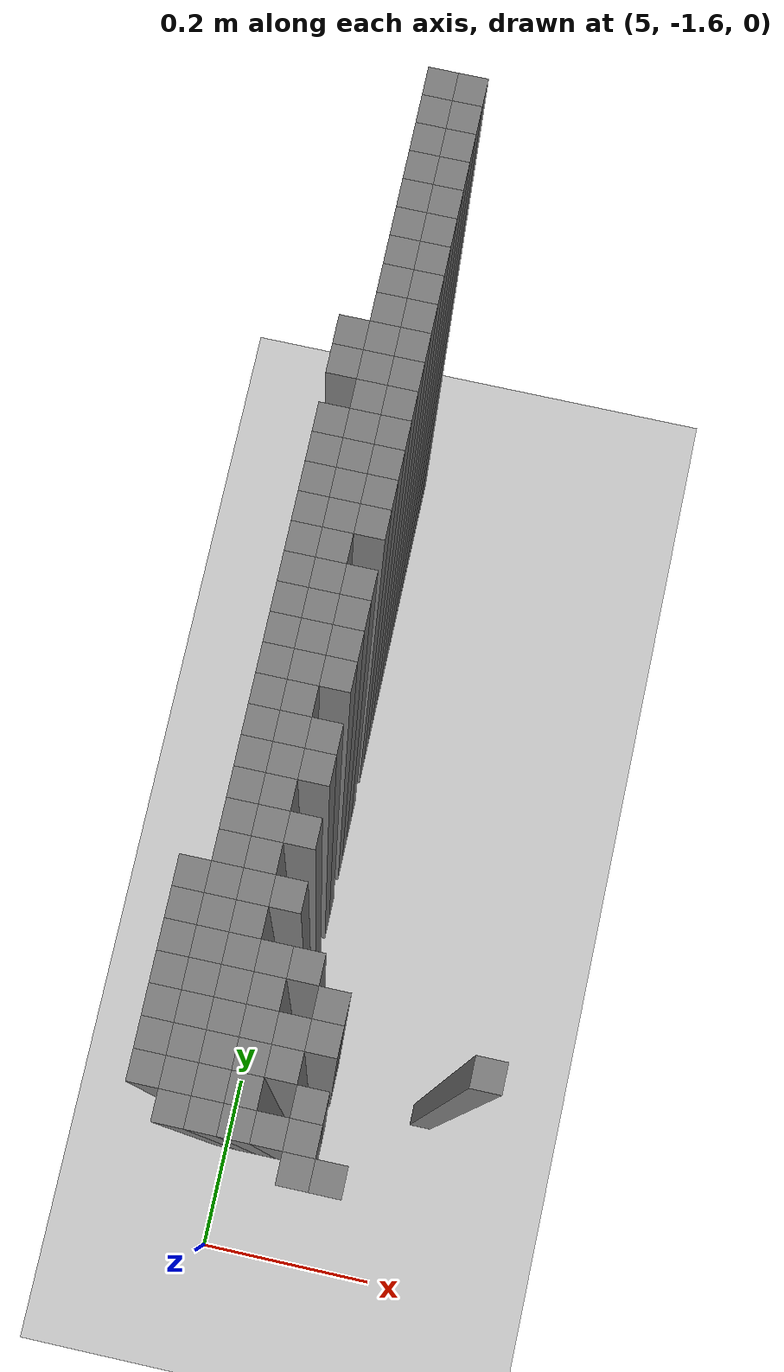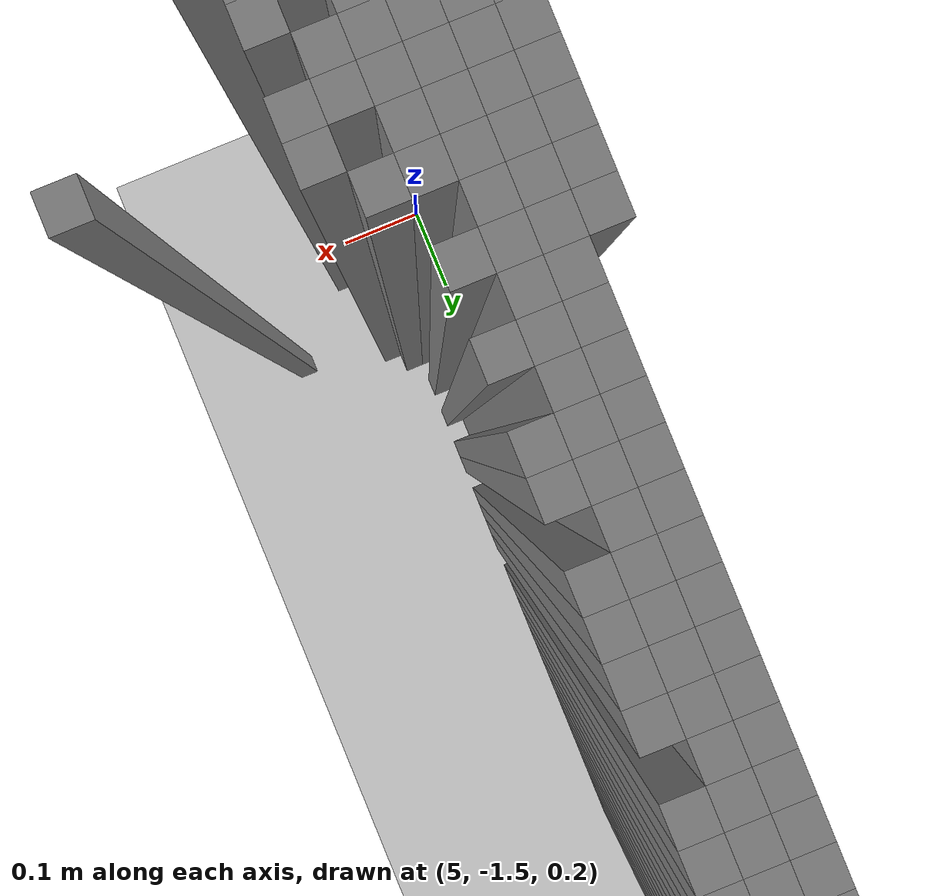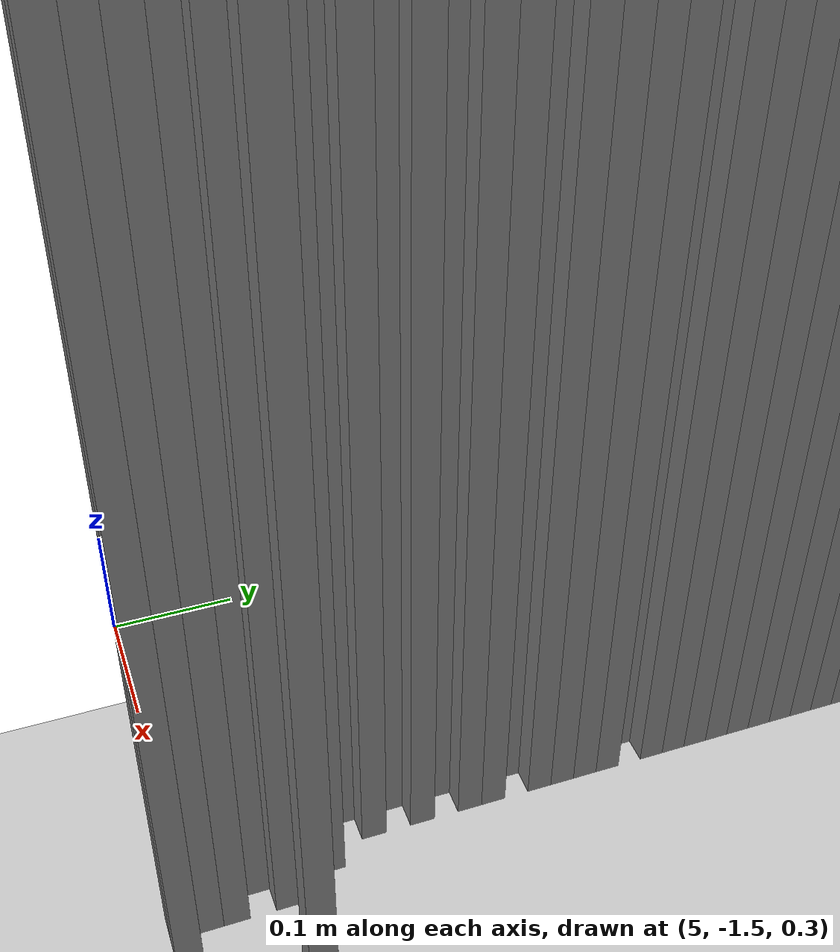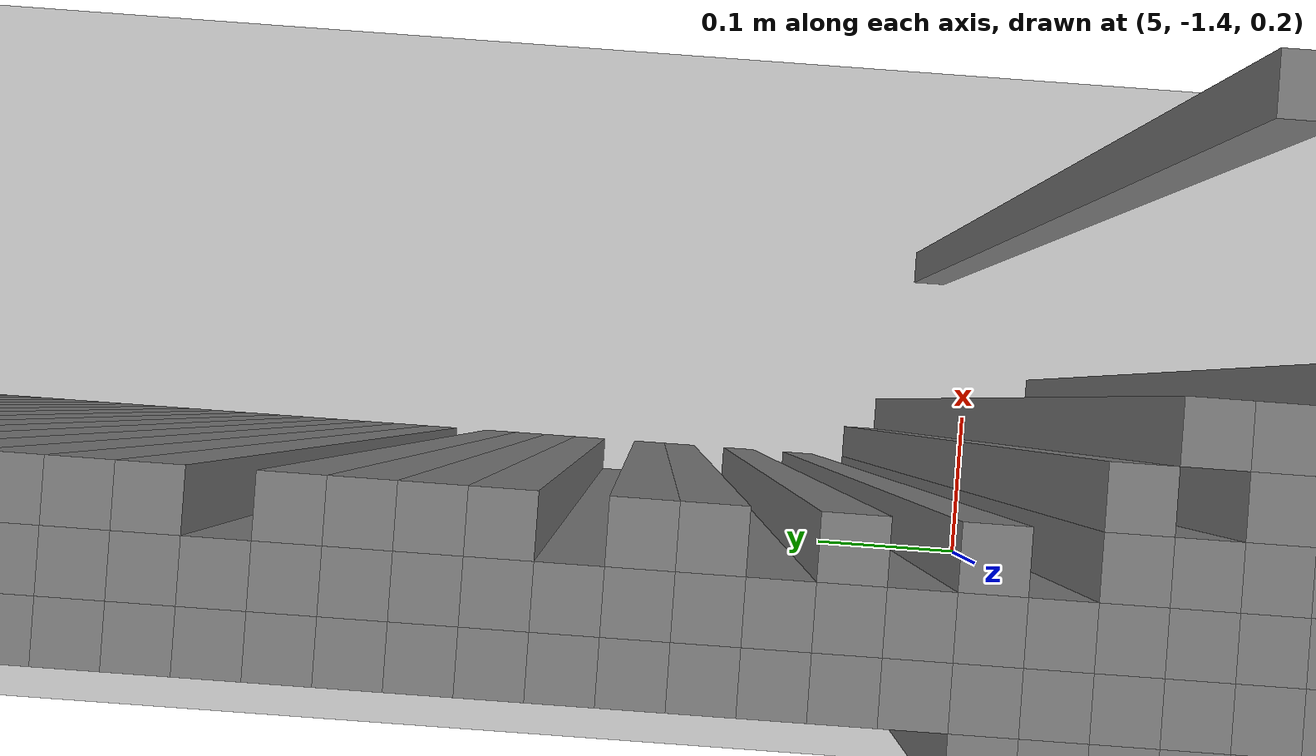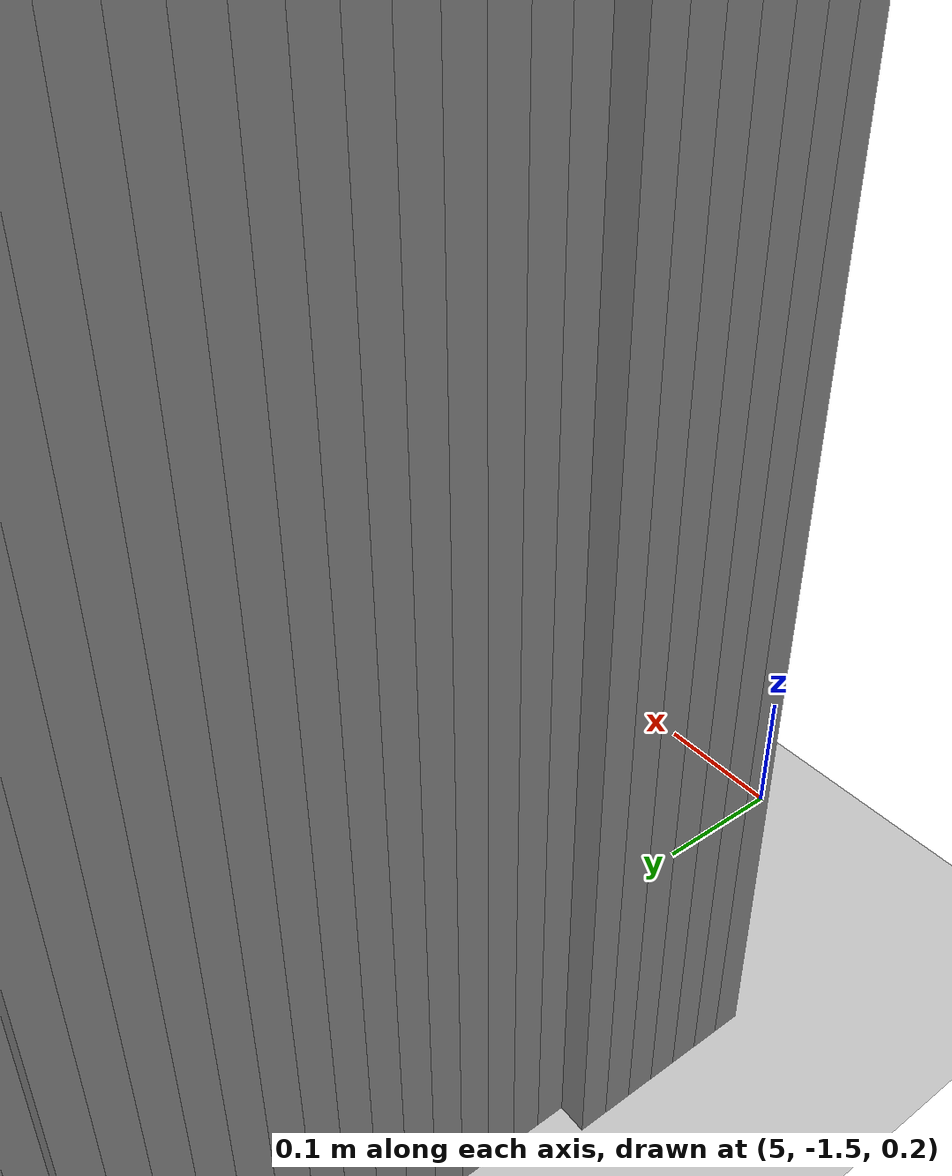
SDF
<sdf version="1.6">
 <world name="map_world">
  <include><uri>model://ground_plane</uri></include>
  <include><uri>model://sun</uri></include>
  <model name="obs_294_74">
   <static>true</static>
   <link name="link">
    <collision name="collision"><geometry><box><size>0.025 0.025 1.0</size></box></geometry></collision>
    <visual name="visual">
     <geometry><box><size>0.025 0.025 1.0</size></box></geometry>
     <material><ambient>0.5 0.5 0.5 1</ambient></material>
    </visual>
   </link>
   <pose>5.023765000000001 -0.6190709999999999 0.5 0 0 0</pose>
  </model>
  <model name="obs_295_74">
   <static>true</static>
   <link name="link">
    <collision name="collision"><geometry><box><size>0.025 0.025 1.0</size></box></geometry></collision>
    <visual name="visual">
     <geometry><box><size>0.025 0.025 1.0</size></box></geometry>
     <material><ambient>0.5 0.5 0.5 1</ambient></material>
    </visual>
   </link>
   <pose>5.0487649999999995 -0.6190709999999999 0.5 0 0 0</pose>
  </model>
  <model name="obs_294_75">
   <static>true</static>
   <link name="link">
    <collision name="collision"><geometry><box><size>0.025 0.025 1.0</size></box></geometry></collision>
    <visual name="visual">
     <geometry><box><size>0.025 0.025 1.0</size></box></geometry>
     <material><ambient>0.5 0.5 0.5 1</ambient></material>
    </visual>
   </link>
   <pose>5.023765000000001 -0.6440709999999998 0.5 0 0 0</pose>
  </model>
  <model name="obs_295_75">
   <static>true</static>
   <link name="link">
    <collision name="collision"><geometry><box><size>0.025 0.025 1.0</size></box></geometry></collision>
    <visual name="visual">
     <geometry><box><size>0.025 0.025 1.0</size></box></geometry>
     <material><ambient>0.5 0.5 0.5 1</ambient></material>
    </visual>
   </link>
   <pose>5.0487649999999995 -0.6440709999999998 0.5 0 0 0</pose>
  </model>
  <model name="obs_294_76">
   <static>true</static>
   <link name="link">
    <collision name="collision"><geometry><box><size>0.025 0.025 1.0</size></box></geometry></collision>
    <visual name="visual">
     <geometry><box><size>0.025 0.025 1.0</size></box></geometry>
     <material><ambient>0.5 0.5 0.5 1</ambient></material>
    </visual>
   </link>
   <pose>5.023765000000001 -0.6690709999999997 0.5 0 0 0</pose>
  </model>
  <model name="obs_295_76">
   <static>true</static>
   <link name="link">
    <collision name="collision"><geometry><box><size>0.025 0.025 1.0</size></box></geometry></collision>
    <visual name="visual">
     <geometry><box><size>0.025 0.025 1.0</size></box></geometry>
     <material><ambient>0.5 0.5 0.5 1</ambient></material>
    </visual>
   </link>
   <pose>5.0487649999999995 -0.6690709999999997 0.5 0 0 0</pose>
  </model>
  <model name="obs_294_77">
   <static>true</static>
   <link name="link">
    <collision name="collision"><geometry><box><size>0.025 0.025 1.0</size></box></geometry></collision>
    <visual name="visual">
     <geometry><box><size>0.025 0.025 1.0</size></box></geometry>
     <material><ambient>0.5 0.5 0.5 1</ambient></material>
    </visual>
   </link>
   <pose>5.023765000000001 -0.6940709999999999 0.5 0 0 0</pose>
  </model>
  <model name="obs_295_77">
   <static>true</static>
   <link name="link">
    <collision name="collision"><geometry><box><size>0.025 0.025 1.0</size></box></geometry></collision>
    <visual name="visual">
     <geometry><box><size>0.025 0.025 1.0</size></box></geometry>
     <material><ambient>0.5 0.5 0.5 1</ambient></material>
    </visual>
   </link>
   <pose>5.0487649999999995 -0.6940709999999999 0.5 0 0 0</pose>
  </model>
  <model name="obs_294_78">
   <static>true</static>
   <link name="link">
    <collision name="collision"><geometry><box><size>0.025 0.025 1.0</size></box></geometry></collision>
    <visual name="visual">
     <geometry><box><size>0.025 0.025 1.0</size></box></geometry>
     <material><ambient>0.5 0.5 0.5 1</ambient></material>
    </visual>
   </link>
   <pose>5.023765000000001 -0.7190709999999998 0.5 0 0 0</pose>
  </model>
  <model name="obs_295_78">
   <static>true</static>
   <link name="link">
    <collision name="collision"><geometry><box><size>0.025 0.025 1.0</size></box></geometry></collision>
    <visual name="visual">
     <geometry><box><size>0.025 0.025 1.0</size></box></geometry>
     <material><ambient>0.5 0.5 0.5 1</ambient></material>
    </visual>
   </link>
   <pose>5.0487649999999995 -0.7190709999999998 0.5 0 0 0</pose>
  </model>
  <model name="obs_294_79">
   <static>true</static>
   <link name="link">
    <collision name="collision"><geometry><box><size>0.025 0.025 1.0</size></box></geometry></collision>
    <visual name="visual">
     <geometry><box><size>0.025 0.025 1.0</size></box></geometry>
     <material><ambient>0.5 0.5 0.5 1</ambient></material>
    </visual>
   </link>
   <pose>5.023765000000001 -0.7440709999999999 0.5 0 0 0</pose>
  </model>
  <model name="obs_295_79">
   <static>true</static>
   <link name="link">
    <collision name="collision"><geometry><box><size>0.025 0.025 1.0</size></box></geometry></collision>
    <visual name="visual">
     <geometry><box><size>0.025 0.025 1.0</size></box></geometry>
     <material><ambient>0.5 0.5 0.5 1</ambient></material>
    </visual>
   </link>
   <pose>5.0487649999999995 -0.7440709999999999 0.5 0 0 0</pose>
  </model>
  <model name="obs_294_80">
   <static>true</static>
   <link name="link">
    <collision name="collision"><geometry><box><size>0.025 0.025 1.0</size></box></geometry></collision>
    <visual name="visual">
     <geometry><box><size>0.025 0.025 1.0</size></box></geometry>
     <material><ambient>0.5 0.5 0.5 1</ambient></material>
    </visual>
   </link>
   <pose>5.023765000000001 -0.7690709999999998 0.5 0 0 0</pose>
  </model>
  <model name="obs_295_80">
   <static>true</static>
   <link name="link">
    <collision name="collision"><geometry><box><size>0.025 0.025 1.0</size></box></geometry></collision>
    <visual name="visual">
     <geometry><box><size>0.025 0.025 1.0</size></box></geometry>
     <material><ambient>0.5 0.5 0.5 1</ambient></material>
    </visual>
   </link>
   <pose>5.0487649999999995 -0.7690709999999998 0.5 0 0 0</pose>
  </model>
  <model name="obs_294_81">
   <static>true</static>
   <link name="link">
    <collision name="collision"><geometry><box><size>0.025 0.025 1.0</size></box></geometry></collision>
    <visual name="visual">
     <geometry><box><size>0.025 0.025 1.0</size></box></geometry>
     <material><ambient>0.5 0.5 0.5 1</ambient></material>
    </visual>
   </link>
   <pose>5.023765000000001 -0.7940709999999997 0.5 0 0 0</pose>
  </model>
  <model name="obs_295_81">
   <static>true</static>
   <link name="link">
    <collision name="collision"><geometry><box><size>0.025 0.025 1.0</size></box></geometry></collision>
    <visual name="visual">
     <geometry><box><size>0.025 0.025 1.0</size></box></geometry>
     <material><ambient>0.5 0.5 0.5 1</ambient></material>
    </visual>
   </link>
   <pose>5.0487649999999995 -0.7940709999999997 0.5 0 0 0</pose>
  </model>
  <model name="obs_294_82">
   <static>true</static>
   <link name="link">
    <collision name="collision"><geometry><box><size>0.025 0.025 1.0</size></box></geometry></collision>
    <visual name="visual">
     <geometry><box><size>0.025 0.025 1.0</size></box></geometry>
     <material><ambient>0.5 0.5 0.5 1</ambient></material>
    </visual>
   </link>
   <pose>5.023765000000001 -0.8190709999999999 0.5 0 0 0</pose>
  </model>
  <model name="obs_295_82">
   <static>true</static>
   <link name="link">
    <collision name="collision"><geometry><box><size>0.025 0.025 1.0</size></box></geometry></collision>
    <visual name="visual">
     <geometry><box><size>0.025 0.025 1.0</size></box></geometry>
     <material><ambient>0.5 0.5 0.5 1</ambient></material>
    </visual>
   </link>
   <pose>5.0487649999999995 -0.8190709999999999 0.5 0 0 0</pose>
  </model>
  <model name="obs_293_83">
   <static>true</static>
   <link name="link">
    <collision name="collision"><geometry><box><size>0.025 0.025 1.0</size></box></geometry></collision>
    <visual name="visual">
     <geometry><box><size>0.025 0.025 1.0</size></box></geometry>
     <material><ambient>0.5 0.5 0.5 1</ambient></material>
    </visual>
   </link>
   <pose>4.998765000000001 -0.8440709999999998 0.5 0 0 0</pose>
  </model>
  <model name="obs_294_83">
   <static>true</static>
   <link name="link">
    <collision name="collision"><geometry><box><size>0.025 0.025 1.0</size></box></geometry></collision>
    <visual name="visual">
     <geometry><box><size>0.025 0.025 1.0</size></box></geometry>
     <material><ambient>0.5 0.5 0.5 1</ambient></material>
    </visual>
   </link>
   <pose>5.023765000000001 -0.8440709999999998 0.5 0 0 0</pose>
  </model>
  <model name="obs_295_83">
   <static>true</static>
   <link name="link">
    <collision name="collision"><geometry><box><size>0.025 0.025 1.0</size></box></geometry></collision>
    <visual name="visual">
     <geometry><box><size>0.025 0.025 1.0</size></box></geometry>
     <material><ambient>0.5 0.5 0.5 1</ambient></material>
    </visual>
   </link>
   <pose>5.0487649999999995 -0.8440709999999998 0.5 0 0 0</pose>
  </model>
  <model name="obs_293_84">
   <static>true</static>
   <link name="link">
    <collision name="collision"><geometry><box><size>0.025 0.025 1.0</size></box></geometry></collision>
    <visual name="visual">
     <geometry><box><size>0.025 0.025 1.0</size></box></geometry>
     <material><ambient>0.5 0.5 0.5 1</ambient></material>
    </visual>
   </link>
   <pose>4.998765000000001 -0.8690709999999999 0.5 0 0 0</pose>
  </model>
  <model name="obs_294_84">
   <static>true</static>
   <link name="link">
    <collision name="collision"><geometry><box><size>0.025 0.025 1.0</size></box></geometry></collision>
    <visual name="visual">
     <geometry><box><size>0.025 0.025 1.0</size></box></geometry>
     <material><ambient>0.5 0.5 0.5 1</ambient></material>
    </visual>
   </link>
   <pose>5.023765000000001 -0.8690709999999999 0.5 0 0 0</pose>
  </model>
  <model name="obs_295_84">
   <static>true</static>
   <link name="link">
    <collision name="collision"><geometry><box><size>0.025 0.025 1.0</size></box></geometry></collision>
    <visual name="visual">
     <geometry><box><size>0.025 0.025 1.0</size></box></geometry>
     <material><ambient>0.5 0.5 0.5 1</ambient></material>
    </visual>
   </link>
   <pose>5.0487649999999995 -0.8690709999999999 0.5 0 0 0</pose>
  </model>
  <model name="obs_294_85">
   <static>true</static>
   <link name="link">
    <collision name="collision"><geometry><box><size>0.025 0.025 1.0</size></box></geometry></collision>
    <visual name="visual">
     <geometry><box><size>0.025 0.025 1.0</size></box></geometry>
     <material><ambient>0.5 0.5 0.5 1</ambient></material>
    </visual>
   </link>
   <pose>5.023765000000001 -0.8940709999999998 0.5 0 0 0</pose>
  </model>
  <model name="obs_295_85">
   <static>true</static>
   <link name="link">
    <collision name="collision"><geometry><box><size>0.025 0.025 1.0</size></box></geometry></collision>
    <visual name="visual">
     <geometry><box><size>0.025 0.025 1.0</size></box></geometry>
     <material><ambient>0.5 0.5 0.5 1</ambient></material>
    </visual>
   </link>
   <pose>5.0487649999999995 -0.8940709999999998 0.5 0 0 0</pose>
  </model>
  <model name="obs_293_86">
   <static>true</static>
   <link name="link">
    <collision name="collision"><geometry><box><size>0.025 0.025 1.0</size></box></geometry></collision>
    <visual name="visual">
     <geometry><box><size>0.025 0.025 1.0</size></box></geometry>
     <material><ambient>0.5 0.5 0.5 1</ambient></material>
    </visual>
   </link>
   <pose>4.998765000000001 -0.919071 0.5 0 0 0</pose>
  </model>
  <model name="obs_294_86">
   <static>true</static>
   <link name="link">
    <collision name="collision"><geometry><box><size>0.025 0.025 1.0</size></box></geometry></collision>
    <visual name="visual">
     <geometry><box><size>0.025 0.025 1.0</size></box></geometry>
     <material><ambient>0.5 0.5 0.5 1</ambient></material>
    </visual>
   </link>
   <pose>5.023765000000001 -0.919071 0.5 0 0 0</pose>
  </model>
  <model name="obs_295_86">
   <static>true</static>
   <link name="link">
    <collision name="collision"><geometry><box><size>0.025 0.025 1.0</size></box></geometry></collision>
    <visual name="visual">
     <geometry><box><size>0.025 0.025 1.0</size></box></geometry>
     <material><ambient>0.5 0.5 0.5 1</ambient></material>
    </visual>
   </link>
   <pose>5.0487649999999995 -0.919071 0.5 0 0 0</pose>
  </model>
  <model name="obs_293_87">
   <static>true</static>
   <link name="link">
    <collision name="collision"><geometry><box><size>0.025 0.025 1.0</size></box></geometry></collision>
    <visual name="visual">
     <geometry><box><size>0.025 0.025 1.0</size></box></geometry>
     <material><ambient>0.5 0.5 0.5 1</ambient></material>
    </visual>
   </link>
   <pose>4.998765000000001 -0.9440709999999999 0.5 0 0 0</pose>
  </model>
  <model name="obs_294_87">
   <static>true</static>
   <link name="link">
    <collision name="collision"><geometry><box><size>0.025 0.025 1.0</size></box></geometry></collision>
    <visual name="visual">
     <geometry><box><size>0.025 0.025 1.0</size></box></geometry>
     <material><ambient>0.5 0.5 0.5 1</ambient></material>
    </visual>
   </link>
   <pose>5.023765000000001 -0.9440709999999999 0.5 0 0 0</pose>
  </model>
  <model name="obs_295_87">
   <static>true</static>
   <link name="link">
    <collision name="collision"><geometry><box><size>0.025 0.025 1.0</size></box></geometry></collision>
    <visual name="visual">
     <geometry><box><size>0.025 0.025 1.0</size></box></geometry>
     <material><ambient>0.5 0.5 0.5 1</ambient></material>
    </visual>
   </link>
   <pose>5.0487649999999995 -0.9440709999999999 0.5 0 0 0</pose>
  </model>
  <model name="obs_293_88">
   <static>true</static>
   <link name="link">
    <collision name="collision"><geometry><box><size>0.025 0.025 1.0</size></box></geometry></collision>
    <visual name="visual">
     <geometry><box><size>0.025 0.025 1.0</size></box></geometry>
     <material><ambient>0.5 0.5 0.5 1</ambient></material>
    </visual>
   </link>
   <pose>4.998765000000001 -0.9690709999999998 0.5 0 0 0</pose>
  </model>
  <model name="obs_294_88">
   <static>true</static>
   <link name="link">
    <collision name="collision"><geometry><box><size>0.025 0.025 1.0</size></box></geometry></collision>
    <visual name="visual">
     <geometry><box><size>0.025 0.025 1.0</size></box></geometry>
     <material><ambient>0.5 0.5 0.5 1</ambient></material>
    </visual>
   </link>
   <pose>5.023765000000001 -0.9690709999999998 0.5 0 0 0</pose>
  </model>
  <model name="obs_295_88">
   <static>true</static>
   <link name="link">
    <collision name="collision"><geometry><box><size>0.025 0.025 1.0</size></box></geometry></collision>
    <visual name="visual">
     <geometry><box><size>0.025 0.025 1.0</size></box></geometry>
     <material><ambient>0.5 0.5 0.5 1</ambient></material>
    </visual>
   </link>
   <pose>5.0487649999999995 -0.9690709999999998 0.5 0 0 0</pose>
  </model>
  <model name="obs_293_89">
   <static>true</static>
   <link name="link">
    <collision name="collision"><geometry><box><size>0.025 0.025 1.0</size></box></geometry></collision>
    <visual name="visual">
     <geometry><box><size>0.025 0.025 1.0</size></box></geometry>
     <material><ambient>0.5 0.5 0.5 1</ambient></material>
    </visual>
   </link>
   <pose>4.998765000000001 -0.9940709999999999 0.5 0 0 0</pose>
  </model>
  <model name="obs_294_89">
   <static>true</static>
   <link name="link">
    <collision name="collision"><geometry><box><size>0.025 0.025 1.0</size></box></geometry></collision>
    <visual name="visual">
     <geometry><box><size>0.025 0.025 1.0</size></box></geometry>
     <material><ambient>0.5 0.5 0.5 1</ambient></material>
    </visual>
   </link>
   <pose>5.023765000000001 -0.9940709999999999 0.5 0 0 0</pose>
  </model>
  <model name="obs_295_89">
   <static>true</static>
   <link name="link">
    <collision name="collision"><geometry><box><size>0.025 0.025 1.0</size></box></geometry></collision>
    <visual name="visual">
     <geometry><box><size>0.025 0.025 1.0</size></box></geometry>
     <material><ambient>0.5 0.5 0.5 1</ambient></material>
    </visual>
   </link>
   <pose>5.0487649999999995 -0.9940709999999999 0.5 0 0 0</pose>
  </model>
  <model name="obs_293_90">
   <static>true</static>
   <link name="link">
    <collision name="collision"><geometry><box><size>0.025 0.025 1.0</size></box></geometry></collision>
    <visual name="visual">
     <geometry><box><size>0.025 0.025 1.0</size></box></geometry>
     <material><ambient>0.5 0.5 0.5 1</ambient></material>
    </visual>
   </link>
   <pose>4.998765000000001 -1.0190709999999998 0.5 0 0 0</pose>
  </model>
  <model name="obs_294_90">
   <static>true</static>
   <link name="link">
    <collision name="collision"><geometry><box><size>0.025 0.025 1.0</size></box></geometry></collision>
    <visual name="visual">
     <geometry><box><size>0.025 0.025 1.0</size></box></geometry>
     <material><ambient>0.5 0.5 0.5 1</ambient></material>
    </visual>
   </link>
   <pose>5.023765000000001 -1.0190709999999998 0.5 0 0 0</pose>
  </model>
  <model name="obs_293_91">
   <static>true</static>
   <link name="link">
    <collision name="collision"><geometry><box><size>0.025 0.025 1.0</size></box></geometry></collision>
    <visual name="visual">
     <geometry><box><size>0.025 0.025 1.0</size></box></geometry>
     <material><ambient>0.5 0.5 0.5 1</ambient></material>
    </visual>
   </link>
   <pose>4.998765000000001 -1.0440709999999997 0.5 0 0 0</pose>
  </model>
  <model name="obs_294_91">
   <static>true</static>
   <link name="link">
    <collision name="collision"><geometry><box><size>0.025 0.025 1.0</size></box></geometry></collision>
    <visual name="visual">
     <geometry><box><size>0.025 0.025 1.0</size></box></geometry>
     <material><ambient>0.5 0.5 0.5 1</ambient></material>
    </visual>
   </link>
   <pose>5.023765000000001 -1.0440709999999997 0.5 0 0 0</pose>
  </model>
  <model name="obs_295_91">
   <static>true</static>
   <link name="link">
    <collision name="collision"><geometry><box><size>0.025 0.025 1.0</size></box></geometry></collision>
    <visual name="visual">
     <geometry><box><size>0.025 0.025 1.0</size></box></geometry>
     <material><ambient>0.5 0.5 0.5 1</ambient></material>
    </visual>
   </link>
   <pose>5.0487649999999995 -1.0440709999999997 0.5 0 0 0</pose>
  </model>
  <model name="obs_293_92">
   <static>true</static>
   <link name="link">
    <collision name="collision"><geometry><box><size>0.025 0.025 1.0</size></box></geometry></collision>
    <visual name="visual">
     <geometry><box><size>0.025 0.025 1.0</size></box></geometry>
     <material><ambient>0.5 0.5 0.5 1</ambient></material>
    </visual>
   </link>
   <pose>4.998765000000001 -1.0690709999999999 0.5 0 0 0</pose>
  </model>
  <model name="obs_294_92">
   <static>true</static>
   <link name="link">
    <collision name="collision"><geometry><box><size>0.025 0.025 1.0</size></box></geometry></collision>
    <visual name="visual">
     <geometry><box><size>0.025 0.025 1.0</size></box></geometry>
     <material><ambient>0.5 0.5 0.5 1</ambient></material>
    </visual>
   </link>
   <pose>5.023765000000001 -1.0690709999999999 0.5 0 0 0</pose>
  </model>
  <model name="obs_295_92">
   <static>true</static>
   <link name="link">
    <collision name="collision"><geometry><box><size>0.025 0.025 1.0</size></box></geometry></collision>
    <visual name="visual">
     <geometry><box><size>0.025 0.025 1.0</size></box></geometry>
     <material><ambient>0.5 0.5 0.5 1</ambient></material>
    </visual>
   </link>
   <pose>5.0487649999999995 -1.0690709999999999 0.5 0 0 0</pose>
  </model>
  <model name="obs_293_93">
   <static>true</static>
   <link name="link">
    <collision name="collision"><geometry><box><size>0.025 0.025 1.0</size></box></geometry></collision>
    <visual name="visual">
     <geometry><box><size>0.025 0.025 1.0</size></box></geometry>
     <material><ambient>0.5 0.5 0.5 1</ambient></material>
    </visual>
   </link>
   <pose>4.998765000000001 -1.094071 0.5 0 0 0</pose>
  </model>
  <model name="obs_294_93">
   <static>true</static>
   <link name="link">
    <collision name="collision"><geometry><box><size>0.025 0.025 1.0</size></box></geometry></collision>
    <visual name="visual">
     <geometry><box><size>0.025 0.025 1.0</size></box></geometry>
     <material><ambient>0.5 0.5 0.5 1</ambient></material>
    </visual>
   </link>
   <pose>5.023765000000001 -1.094071 0.5 0 0 0</pose>
  </model>
  <model name="obs_295_93">
   <static>true</static>
   <link name="link">
    <collision name="collision"><geometry><box><size>0.025 0.025 1.0</size></box></geometry></collision>
    <visual name="visual">
     <geometry><box><size>0.025 0.025 1.0</size></box></geometry>
     <material><ambient>0.5 0.5 0.5 1</ambient></material>
    </visual>
   </link>
   <pose>5.0487649999999995 -1.094071 0.5 0 0 0</pose>
  </model>
  <model name="obs_293_94">
   <static>true</static>
   <link name="link">
    <collision name="collision"><geometry><box><size>0.025 0.025 1.0</size></box></geometry></collision>
    <visual name="visual">
     <geometry><box><size>0.025 0.025 1.0</size></box></geometry>
     <material><ambient>0.5 0.5 0.5 1</ambient></material>
    </visual>
   </link>
   <pose>4.998765000000001 -1.119071 0.5 0 0 0</pose>
  </model>
  <model name="obs_294_94">
   <static>true</static>
   <link name="link">
    <collision name="collision"><geometry><box><size>0.025 0.025 1.0</size></box></geometry></collision>
    <visual name="visual">
     <geometry><box><size>0.025 0.025 1.0</size></box></geometry>
     <material><ambient>0.5 0.5 0.5 1</ambient></material>
    </visual>
   </link>
   <pose>5.023765000000001 -1.119071 0.5 0 0 0</pose>
  </model>
  <model name="obs_295_94">
   <static>true</static>
   <link name="link">
    <collision name="collision"><geometry><box><size>0.025 0.025 1.0</size></box></geometry></collision>
    <visual name="visual">
     <geometry><box><size>0.025 0.025 1.0</size></box></geometry>
     <material><ambient>0.5 0.5 0.5 1</ambient></material>
    </visual>
   </link>
   <pose>5.0487649999999995 -1.119071 0.5 0 0 0</pose>
  </model>
  <model name="obs_293_95">
   <static>true</static>
   <link name="link">
    <collision name="collision"><geometry><box><size>0.025 0.025 1.0</size></box></geometry></collision>
    <visual name="visual">
     <geometry><box><size>0.025 0.025 1.0</size></box></geometry>
     <material><ambient>0.5 0.5 0.5 1</ambient></material>
    </visual>
   </link>
   <pose>4.998765000000001 -1.1440709999999998 0.5 0 0 0</pose>
  </model>
  <model name="obs_294_95">
   <static>true</static>
   <link name="link">
    <collision name="collision"><geometry><box><size>0.025 0.025 1.0</size></box></geometry></collision>
    <visual name="visual">
     <geometry><box><size>0.025 0.025 1.0</size></box></geometry>
     <material><ambient>0.5 0.5 0.5 1</ambient></material>
    </visual>
   </link>
   <pose>5.023765000000001 -1.1440709999999998 0.5 0 0 0</pose>
  </model>
  <model name="obs_293_96">
   <static>true</static>
   <link name="link">
    <collision name="collision"><geometry><box><size>0.025 0.025 1.0</size></box></geometry></collision>
    <visual name="visual">
     <geometry><box><size>0.025 0.025 1.0</size></box></geometry>
     <material><ambient>0.5 0.5 0.5 1</ambient></material>
    </visual>
   </link>
   <pose>4.998765000000001 -1.1690709999999997 0.5 0 0 0</pose>
  </model>
  <model name="obs_294_96">
   <static>true</static>
   <link name="link">
    <collision name="collision"><geometry><box><size>0.025 0.025 1.0</size></box></geometry></collision>
    <visual name="visual">
     <geometry><box><size>0.025 0.025 1.0</size></box></geometry>
     <material><ambient>0.5 0.5 0.5 1</ambient></material>
    </visual>
   </link>
   <pose>5.023765000000001 -1.1690709999999997 0.5 0 0 0</pose>
  </model>
  <model name="obs_295_96">
   <static>true</static>
   <link name="link">
    <collision name="collision"><geometry><box><size>0.025 0.025 1.0</size></box></geometry></collision>
    <visual name="visual">
     <geometry><box><size>0.025 0.025 1.0</size></box></geometry>
     <material><ambient>0.5 0.5 0.5 1</ambient></material>
    </visual>
   </link>
   <pose>5.0487649999999995 -1.1690709999999997 0.5 0 0 0</pose>
  </model>
  <model name="obs_293_97">
   <static>true</static>
   <link name="link">
    <collision name="collision"><geometry><box><size>0.025 0.025 1.0</size></box></geometry></collision>
    <visual name="visual">
     <geometry><box><size>0.025 0.025 1.0</size></box></geometry>
     <material><ambient>0.5 0.5 0.5 1</ambient></material>
    </visual>
   </link>
   <pose>4.998765000000001 -1.1940709999999999 0.5 0 0 0</pose>
  </model>
  <model name="obs_294_97">
   <static>true</static>
   <link name="link">
    <collision name="collision"><geometry><box><size>0.025 0.025 1.0</size></box></geometry></collision>
    <visual name="visual">
     <geometry><box><size>0.025 0.025 1.0</size></box></geometry>
     <material><ambient>0.5 0.5 0.5 1</ambient></material>
    </visual>
   </link>
   <pose>5.023765000000001 -1.1940709999999999 0.5 0 0 0</pose>
  </model>
  <model name="obs_295_97">
   <static>true</static>
   <link name="link">
    <collision name="collision"><geometry><box><size>0.025 0.025 1.0</size></box></geometry></collision>
    <visual name="visual">
     <geometry><box><size>0.025 0.025 1.0</size></box></geometry>
     <material><ambient>0.5 0.5 0.5 1</ambient></material>
    </visual>
   </link>
   <pose>5.0487649999999995 -1.1940709999999999 0.5 0 0 0</pose>
  </model>
  <model name="obs_293_98">
   <static>true</static>
   <link name="link">
    <collision name="collision"><geometry><box><size>0.025 0.025 1.0</size></box></geometry></collision>
    <visual name="visual">
     <geometry><box><size>0.025 0.025 1.0</size></box></geometry>
     <material><ambient>0.5 0.5 0.5 1</ambient></material>
    </visual>
   </link>
   <pose>4.998765000000001 -1.219071 0.5 0 0 0</pose>
  </model>
  <model name="obs_294_98">
   <static>true</static>
   <link name="link">
    <collision name="collision"><geometry><box><size>0.025 0.025 1.0</size></box></geometry></collision>
    <visual name="visual">
     <geometry><box><size>0.025 0.025 1.0</size></box></geometry>
     <material><ambient>0.5 0.5 0.5 1</ambient></material>
    </visual>
   </link>
   <pose>5.023765000000001 -1.219071 0.5 0 0 0</pose>
  </model>
  <model name="obs_293_99">
   <static>true</static>
   <link name="link">
    <collision name="collision"><geometry><box><size>0.025 0.025 1.0</size></box></geometry></collision>
    <visual name="visual">
     <geometry><box><size>0.025 0.025 1.0</size></box></geometry>
     <material><ambient>0.5 0.5 0.5 1</ambient></material>
    </visual>
   </link>
   <pose>4.998765000000001 -1.244071 0.5 0 0 0</pose>
  </model>
  <model name="obs_294_99">
   <static>true</static>
   <link name="link">
    <collision name="collision"><geometry><box><size>0.025 0.025 1.0</size></box></geometry></collision>
    <visual name="visual">
     <geometry><box><size>0.025 0.025 1.0</size></box></geometry>
     <material><ambient>0.5 0.5 0.5 1</ambient></material>
    </visual>
   </link>
   <pose>5.023765000000001 -1.244071 0.5 0 0 0</pose>
  </model>
  <model name="obs_295_99">
   <static>true</static>
   <link name="link">
    <collision name="collision"><geometry><box><size>0.025 0.025 1.0</size></box></geometry></collision>
    <visual name="visual">
     <geometry><box><size>0.025 0.025 1.0</size></box></geometry>
     <material><ambient>0.5 0.5 0.5 1</ambient></material>
    </visual>
   </link>
   <pose>5.0487649999999995 -1.244071 0.5 0 0 0</pose>
  </model>
  <model name="obs_293_100">
   <static>true</static>
   <link name="link">
    <collision name="collision"><geometry><box><size>0.025 0.025 1.0</size></box></geometry></collision>
    <visual name="visual">
     <geometry><box><size>0.025 0.025 1.0</size></box></geometry>
     <material><ambient>0.5 0.5 0.5 1</ambient></material>
    </visual>
   </link>
   <pose>4.998765000000001 -1.2690709999999998 0.5 0 0 0</pose>
  </model>
  <model name="obs_294_100">
   <static>true</static>
   <link name="link">
    <collision name="collision"><geometry><box><size>0.025 0.025 1.0</size></box></geometry></collision>
    <visual name="visual">
     <geometry><box><size>0.025 0.025 1.0</size></box></geometry>
     <material><ambient>0.5 0.5 0.5 1</ambient></material>
    </visual>
   </link>
   <pose>5.023765000000001 -1.2690709999999998 0.5 0 0 0</pose>
  </model>
  <model name="obs_292_101">
   <static>true</static>
   <link name="link">
    <collision name="collision"><geometry><box><size>0.025 0.025 1.0</size></box></geometry></collision>
    <visual name="visual">
     <geometry><box><size>0.025 0.025 1.0</size></box></geometry>
     <material><ambient>0.5 0.5 0.5 1</ambient></material>
    </visual>
   </link>
   <pose>4.973765 -1.2940709999999997 0.5 0 0 0</pose>
  </model>
  <model name="obs_293_101">
   <static>true</static>
   <link name="link">
    <collision name="collision"><geometry><box><size>0.025 0.025 1.0</size></box></geometry></collision>
    <visual name="visual">
     <geometry><box><size>0.025 0.025 1.0</size></box></geometry>
     <material><ambient>0.5 0.5 0.5 1</ambient></material>
    </visual>
   </link>
   <pose>4.998765000000001 -1.2940709999999997 0.5 0 0 0</pose>
  </model>
  <model name="obs_294_101">
   <static>true</static>
   <link name="link">
    <collision name="collision"><geometry><box><size>0.025 0.025 1.0</size></box></geometry></collision>
    <visual name="visual">
     <geometry><box><size>0.025 0.025 1.0</size></box></geometry>
     <material><ambient>0.5 0.5 0.5 1</ambient></material>
    </visual>
   </link>
   <pose>5.023765000000001 -1.2940709999999997 0.5 0 0 0</pose>
  </model>
  <model name="obs_295_101">
   <static>true</static>
   <link name="link">
    <collision name="collision"><geometry><box><size>0.025 0.025 1.0</size></box></geometry></collision>
    <visual name="visual">
     <geometry><box><size>0.025 0.025 1.0</size></box></geometry>
     <material><ambient>0.5 0.5 0.5 1</ambient></material>
    </visual>
   </link>
   <pose>5.0487649999999995 -1.2940709999999997 0.5 0 0 0</pose>
  </model>
  <model name="obs_292_102">
   <static>true</static>
   <link name="link">
    <collision name="collision"><geometry><box><size>0.025 0.025 1.0</size></box></geometry></collision>
    <visual name="visual">
     <geometry><box><size>0.025 0.025 1.0</size></box></geometry>
     <material><ambient>0.5 0.5 0.5 1</ambient></material>
    </visual>
   </link>
   <pose>4.973765 -1.3190709999999999 0.5 0 0 0</pose>
  </model>
  <model name="obs_293_102">
   <static>true</static>
   <link name="link">
    <collision name="collision"><geometry><box><size>0.025 0.025 1.0</size></box></geometry></collision>
    <visual name="visual">
     <geometry><box><size>0.025 0.025 1.0</size></box></geometry>
     <material><ambient>0.5 0.5 0.5 1</ambient></material>
    </visual>
   </link>
   <pose>4.998765000000001 -1.3190709999999999 0.5 0 0 0</pose>
  </model>
  <model name="obs_294_102">
   <static>true</static>
   <link name="link">
    <collision name="collision"><geometry><box><size>0.025 0.025 1.0</size></box></geometry></collision>
    <visual name="visual">
     <geometry><box><size>0.025 0.025 1.0</size></box></geometry>
     <material><ambient>0.5 0.5 0.5 1</ambient></material>
    </visual>
   </link>
   <pose>5.023765000000001 -1.3190709999999999 0.5 0 0 0</pose>
  </model>
  <model name="obs_292_103">
   <static>true</static>
   <link name="link">
    <collision name="collision"><geometry><box><size>0.025 0.025 1.0</size></box></geometry></collision>
    <visual name="visual">
     <geometry><box><size>0.025 0.025 1.0</size></box></geometry>
     <material><ambient>0.5 0.5 0.5 1</ambient></material>
    </visual>
   </link>
   <pose>4.973765 -1.344071 0.5 0 0 0</pose>
  </model>
  <model name="obs_293_103">
   <static>true</static>
   <link name="link">
    <collision name="collision"><geometry><box><size>0.025 0.025 1.0</size></box></geometry></collision>
    <visual name="visual">
     <geometry><box><size>0.025 0.025 1.0</size></box></geometry>
     <material><ambient>0.5 0.5 0.5 1</ambient></material>
    </visual>
   </link>
   <pose>4.998765000000001 -1.344071 0.5 0 0 0</pose>
  </model>
  <model name="obs_294_103">
   <static>true</static>
   <link name="link">
    <collision name="collision"><geometry><box><size>0.025 0.025 1.0</size></box></geometry></collision>
    <visual name="visual">
     <geometry><box><size>0.025 0.025 1.0</size></box></geometry>
     <material><ambient>0.5 0.5 0.5 1</ambient></material>
    </visual>
   </link>
   <pose>5.023765000000001 -1.344071 0.5 0 0 0</pose>
  </model>
  <model name="obs_295_103">
   <static>true</static>
   <link name="link">
    <collision name="collision"><geometry><box><size>0.025 0.025 1.0</size></box></geometry></collision>
    <visual name="visual">
     <geometry><box><size>0.025 0.025 1.0</size></box></geometry>
     <material><ambient>0.5 0.5 0.5 1</ambient></material>
    </visual>
   </link>
   <pose>5.0487649999999995 -1.344071 0.5 0 0 0</pose>
  </model>
  <model name="obs_296_103">
   <static>true</static>
   <link name="link">
    <collision name="collision"><geometry><box><size>0.025 0.025 1.0</size></box></geometry></collision>
    <visual name="visual">
     <geometry><box><size>0.025 0.025 1.0</size></box></geometry>
     <material><ambient>0.5 0.5 0.5 1</ambient></material>
    </visual>
   </link>
   <pose>5.073765 -1.344071 0.5 0 0 0</pose>
  </model>
  <model name="obs_292_104">
   <static>true</static>
   <link name="link">
    <collision name="collision"><geometry><box><size>0.025 0.025 1.0</size></box></geometry></collision>
    <visual name="visual">
     <geometry><box><size>0.025 0.025 1.0</size></box></geometry>
     <material><ambient>0.5 0.5 0.5 1</ambient></material>
    </visual>
   </link>
   <pose>4.973765 -1.369071 0.5 0 0 0</pose>
  </model>
  <model name="obs_293_104">
   <static>true</static>
   <link name="link">
    <collision name="collision"><geometry><box><size>0.025 0.025 1.0</size></box></geometry></collision>
    <visual name="visual">
     <geometry><box><size>0.025 0.025 1.0</size></box></geometry>
     <material><ambient>0.5 0.5 0.5 1</ambient></material>
    </visual>
   </link>
   <pose>4.998765000000001 -1.369071 0.5 0 0 0</pose>
  </model>
  <model name="obs_294_104">
   <static>true</static>
   <link name="link">
    <collision name="collision"><geometry><box><size>0.025 0.025 1.0</size></box></geometry></collision>
    <visual name="visual">
     <geometry><box><size>0.025 0.025 1.0</size></box></geometry>
     <material><ambient>0.5 0.5 0.5 1</ambient></material>
    </visual>
   </link>
   <pose>5.023765000000001 -1.369071 0.5 0 0 0</pose>
  </model>
  <model name="obs_295_104">
   <static>true</static>
   <link name="link">
    <collision name="collision"><geometry><box><size>0.025 0.025 1.0</size></box></geometry></collision>
    <visual name="visual">
     <geometry><box><size>0.025 0.025 1.0</size></box></geometry>
     <material><ambient>0.5 0.5 0.5 1</ambient></material>
    </visual>
   </link>
   <pose>5.0487649999999995 -1.369071 0.5 0 0 0</pose>
  </model>
  <model name="obs_297_104">
   <static>true</static>
   <link name="link">
    <collision name="collision"><geometry><box><size>0.025 0.025 1.0</size></box></geometry></collision>
    <visual name="visual">
     <geometry><box><size>0.025 0.025 1.0</size></box></geometry>
     <material><ambient>0.5 0.5 0.5 1</ambient></material>
    </visual>
   </link>
   <pose>5.098765 -1.369071 0.5 0 0 0</pose>
  </model>
  <model name="obs_292_105">
   <static>true</static>
   <link name="link">
    <collision name="collision"><geometry><box><size>0.025 0.025 1.0</size></box></geometry></collision>
    <visual name="visual">
     <geometry><box><size>0.025 0.025 1.0</size></box></geometry>
     <material><ambient>0.5 0.5 0.5 1</ambient></material>
    </visual>
   </link>
   <pose>4.973765 -1.3940709999999998 0.5 0 0 0</pose>
  </model>
  <model name="obs_293_105">
   <static>true</static>
   <link name="link">
    <collision name="collision"><geometry><box><size>0.025 0.025 1.0</size></box></geometry></collision>
    <visual name="visual">
     <geometry><box><size>0.025 0.025 1.0</size></box></geometry>
     <material><ambient>0.5 0.5 0.5 1</ambient></material>
    </visual>
   </link>
   <pose>4.998765000000001 -1.3940709999999998 0.5 0 0 0</pose>
  </model>
  <model name="obs_294_105">
   <static>true</static>
   <link name="link">
    <collision name="collision"><geometry><box><size>0.025 0.025 1.0</size></box></geometry></collision>
    <visual name="visual">
     <geometry><box><size>0.025 0.025 1.0</size></box></geometry>
     <material><ambient>0.5 0.5 0.5 1</ambient></material>
    </visual>
   </link>
   <pose>5.023765000000001 -1.3940709999999998 0.5 0 0 0</pose>
  </model>
  <model name="obs_295_105">
   <static>true</static>
   <link name="link">
    <collision name="collision"><geometry><box><size>0.025 0.025 1.0</size></box></geometry></collision>
    <visual name="visual">
     <geometry><box><size>0.025 0.025 1.0</size></box></geometry>
     <material><ambient>0.5 0.5 0.5 1</ambient></material>
    </visual>
   </link>
   <pose>5.0487649999999995 -1.3940709999999998 0.5 0 0 0</pose>
  </model>
  <model name="obs_296_105">
   <static>true</static>
   <link name="link">
    <collision name="collision"><geometry><box><size>0.025 0.025 1.0</size></box></geometry></collision>
    <visual name="visual">
     <geometry><box><size>0.025 0.025 1.0</size></box></geometry>
     <material><ambient>0.5 0.5 0.5 1</ambient></material>
    </visual>
   </link>
   <pose>5.073765 -1.3940709999999998 0.5 0 0 0</pose>
  </model>
  <model name="obs_297_105">
   <static>true</static>
   <link name="link">
    <collision name="collision"><geometry><box><size>0.025 0.025 1.0</size></box></geometry></collision>
    <visual name="visual">
     <geometry><box><size>0.025 0.025 1.0</size></box></geometry>
     <material><ambient>0.5 0.5 0.5 1</ambient></material>
    </visual>
   </link>
   <pose>5.098765 -1.3940709999999998 0.5 0 0 0</pose>
  </model>
  <model name="obs_302_105">
   <static>true</static>
   <link name="link">
    <collision name="collision"><geometry><box><size>0.025 0.025 1.0</size></box></geometry></collision>
    <visual name="visual">
     <geometry><box><size>0.025 0.025 1.0</size></box></geometry>
     <material><ambient>0.5 0.5 0.5 1</ambient></material>
    </visual>
   </link>
   <pose>5.223765 -1.3940709999999998 0.5 0 0 0</pose>
  </model>
  <model name="obs_292_106">
   <static>true</static>
   <link name="link">
    <collision name="collision"><geometry><box><size>0.025 0.025 1.0</size></box></geometry></collision>
    <visual name="visual">
     <geometry><box><size>0.025 0.025 1.0</size></box></geometry>
     <material><ambient>0.5 0.5 0.5 1</ambient></material>
    </visual>
   </link>
   <pose>4.973765 -1.4190709999999997 0.5 0 0 0</pose>
  </model>
  <model name="obs_293_106">
   <static>true</static>
   <link name="link">
    <collision name="collision"><geometry><box><size>0.025 0.025 1.0</size></box></geometry></collision>
    <visual name="visual">
     <geometry><box><size>0.025 0.025 1.0</size></box></geometry>
     <material><ambient>0.5 0.5 0.5 1</ambient></material>
    </visual>
   </link>
   <pose>4.998765000000001 -1.4190709999999997 0.5 0 0 0</pose>
  </model>
  <model name="obs_294_106">
   <static>true</static>
   <link name="link">
    <collision name="collision"><geometry><box><size>0.025 0.025 1.0</size></box></geometry></collision>
    <visual name="visual">
     <geometry><box><size>0.025 0.025 1.0</size></box></geometry>
     <material><ambient>0.5 0.5 0.5 1</ambient></material>
    </visual>
   </link>
   <pose>5.023765000000001 -1.4190709999999997 0.5 0 0 0</pose>
  </model>
  <model name="obs_295_106">
   <static>true</static>
   <link name="link">
    <collision name="collision"><geometry><box><size>0.025 0.025 1.0</size></box></geometry></collision>
    <visual name="visual">
     <geometry><box><size>0.025 0.025 1.0</size></box></geometry>
     <material><ambient>0.5 0.5 0.5 1</ambient></material>
    </visual>
   </link>
   <pose>5.0487649999999995 -1.4190709999999997 0.5 0 0 0</pose>
  </model>
  <model name="obs_296_106">
   <static>true</static>
   <link name="link">
    <collision name="collision"><geometry><box><size>0.025 0.025 1.0</size></box></geometry></collision>
    <visual name="visual">
     <geometry><box><size>0.025 0.025 1.0</size></box></geometry>
     <material><ambient>0.5 0.5 0.5 1</ambient></material>
    </visual>
   </link>
   <pose>5.073765 -1.4190709999999997 0.5 0 0 0</pose>
  </model>
  <model name="obs_292_107">
   <static>true</static>
   <link name="link">
    <collision name="collision"><geometry><box><size>0.025 0.025 1.0</size></box></geometry></collision>
    <visual name="visual">
     <geometry><box><size>0.025 0.025 1.0</size></box></geometry>
     <material><ambient>0.5 0.5 0.5 1</ambient></material>
    </visual>
   </link>
   <pose>4.973765 -1.4440709999999999 0.5 0 0 0</pose>
  </model>
  <model name="obs_293_107">
   <static>true</static>
   <link name="link">
    <collision name="collision"><geometry><box><size>0.025 0.025 1.0</size></box></geometry></collision>
    <visual name="visual">
     <geometry><box><size>0.025 0.025 1.0</size></box></geometry>
     <material><ambient>0.5 0.5 0.5 1</ambient></material>
    </visual>
   </link>
   <pose>4.998765000000001 -1.4440709999999999 0.5 0 0 0</pose>
  </model>
  <model name="obs_294_107">
   <static>true</static>
   <link name="link">
    <collision name="collision"><geometry><box><size>0.025 0.025 1.0</size></box></geometry></collision>
    <visual name="visual">
     <geometry><box><size>0.025 0.025 1.0</size></box></geometry>
     <material><ambient>0.5 0.5 0.5 1</ambient></material>
    </visual>
   </link>
   <pose>5.023765000000001 -1.4440709999999999 0.5 0 0 0</pose>
  </model>
  <model name="obs_295_107">
   <static>true</static>
   <link name="link">
    <collision name="collision"><geometry><box><size>0.025 0.025 1.0</size></box></geometry></collision>
    <visual name="visual">
     <geometry><box><size>0.025 0.025 1.0</size></box></geometry>
     <material><ambient>0.5 0.5 0.5 1</ambient></material>
    </visual>
   </link>
   <pose>5.0487649999999995 -1.4440709999999999 0.5 0 0 0</pose>
  </model>
  <model name="obs_297_107">
   <static>true</static>
   <link name="link">
    <collision name="collision"><geometry><box><size>0.025 0.025 1.0</size></box></geometry></collision>
    <visual name="visual">
     <geometry><box><size>0.025 0.025 1.0</size></box></geometry>
     <material><ambient>0.5 0.5 0.5 1</ambient></material>
    </visual>
   </link>
   <pose>5.098765 -1.4440709999999999 0.5 0 0 0</pose>
  </model>
  <model name="obs_293_108">
   <static>true</static>
   <link name="link">
    <collision name="collision"><geometry><box><size>0.025 0.025 1.0</size></box></geometry></collision>
    <visual name="visual">
     <geometry><box><size>0.025 0.025 1.0</size></box></geometry>
     <material><ambient>0.5 0.5 0.5 1</ambient></material>
    </visual>
   </link>
   <pose>4.998765000000001 -1.469071 0.5 0 0 0</pose>
  </model>
  <model name="obs_294_108">
   <static>true</static>
   <link name="link">
    <collision name="collision"><geometry><box><size>0.025 0.025 1.0</size></box></geometry></collision>
    <visual name="visual">
     <geometry><box><size>0.025 0.025 1.0</size></box></geometry>
     <material><ambient>0.5 0.5 0.5 1</ambient></material>
    </visual>
   </link>
   <pose>5.023765000000001 -1.469071 0.5 0 0 0</pose>
  </model>
  <model name="obs_295_108">
   <static>true</static>
   <link name="link">
    <collision name="collision"><geometry><box><size>0.025 0.025 1.0</size></box></geometry></collision>
    <visual name="visual">
     <geometry><box><size>0.025 0.025 1.0</size></box></geometry>
     <material><ambient>0.5 0.5 0.5 1</ambient></material>
    </visual>
   </link>
   <pose>5.0487649999999995 -1.469071 0.5 0 0 0</pose>
  </model>
  <model name="obs_296_108">
   <static>true</static>
   <link name="link">
    <collision name="collision"><geometry><box><size>0.025 0.025 1.0</size></box></geometry></collision>
    <visual name="visual">
     <geometry><box><size>0.025 0.025 1.0</size></box></geometry>
     <material><ambient>0.5 0.5 0.5 1</ambient></material>
    </visual>
   </link>
   <pose>5.073765 -1.469071 0.5 0 0 0</pose>
  </model>
  <model name="obs_297_108">
   <static>true</static>
   <link name="link">
    <collision name="collision"><geometry><box><size>0.025 0.025 1.0</size></box></geometry></collision>
    <visual name="visual">
     <geometry><box><size>0.025 0.025 1.0</size></box></geometry>
     <material><ambient>0.5 0.5 0.5 1</ambient></material>
    </visual>
   </link>
   <pose>5.098765 -1.469071 0.5 0 0 0</pose>
  </model>
  <model name="obs_297_109">
   <static>true</static>
   <link name="link">
    <collision name="collision"><geometry><box><size>0.025 0.025 1.0</size></box></geometry></collision>
    <visual name="visual">
     <geometry><box><size>0.025 0.025 1.0</size></box></geometry>
     <material><ambient>0.5 0.5 0.5 1</ambient></material>
    </visual>
   </link>
   <pose>5.098765 -1.494071 0.5 0 0 0</pose>
  </model>
  <model name="obs_298_109">
   <static>true</static>
   <link name="link">
    <collision name="collision"><geometry><box><size>0.025 0.025 1.0</size></box></geometry></collision>
    <visual name="visual">
     <geometry><box><size>0.025 0.025 1.0</size></box></geometry>
     <material><ambient>0.5 0.5 0.5 1</ambient></material>
    </visual>
   </link>
   <pose>5.123765000000001 -1.494071 0.5 0 0 0</pose>
  </model>
 </world>
</sdf>
